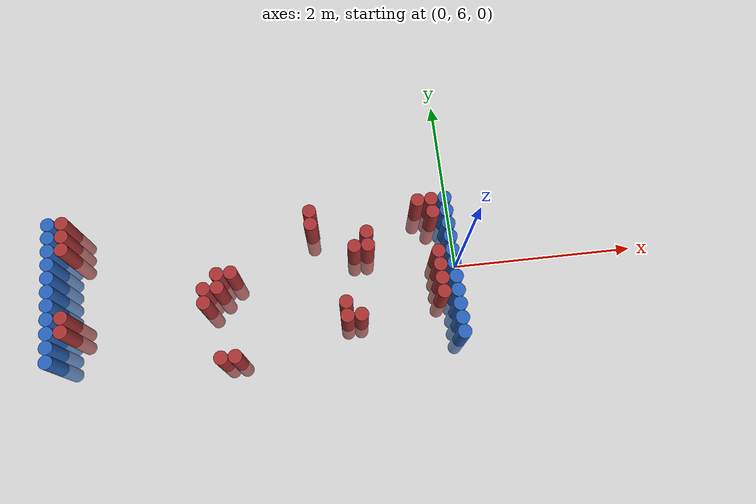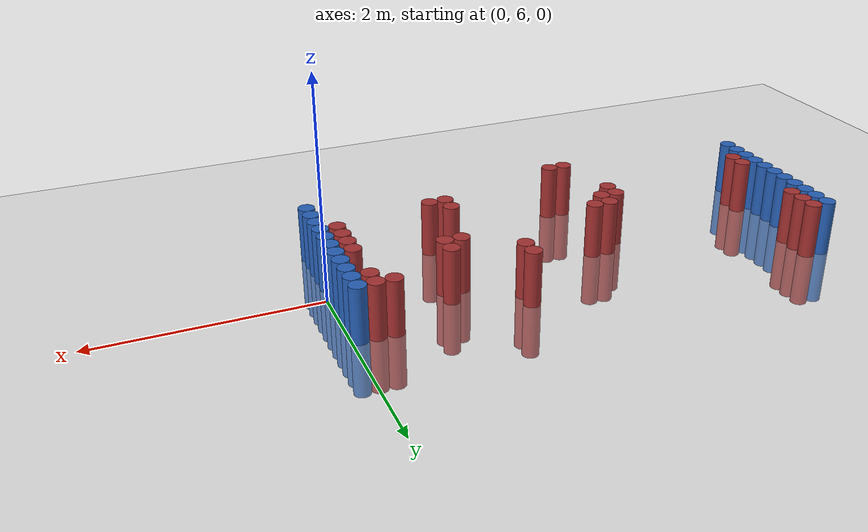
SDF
<sdf version="1.6">
 <world name="default">
  <model name="ground_plane">
   <static>1</static>
   <link name="link">
    <collision name="collision">
     <geometry><plane><normal>0 0 1</normal><size>100 100</size></plane></geometry>
     <surface><friction><ode><mu>100</mu><mu2>50</mu2></ode></friction></surface>
    </collision>
    <visual name="visual">
     <cast_shadows>0</cast_shadows>
     <geometry><plane><normal>0 0 1</normal><size>100 100</size></plane></geometry>
     <material>
      <script><uri>file://media/materials/scripts/gazebo.material</uri><name>Gazebo/Grey</name></script>
     </material>
    </visual>
   </link>
  </model>
  <model name="unit_cylinder_97">
   <static>1</static>
   <pose>-4.425000 5.325000 0.000000 0.000000 0.000000 0.000000</pose>
   <link name="link">
    <inertial>
     <mass>1</mass>
     <inertia><ixx>0.145833</ixx><ixy>0</ixy><ixz>0</ixz><iyy>0.145833</iyy><iyz>0</iyz><izz>0.125</izz></inertia>
    </inertial>
    <collision name="collision">
     <geometry><cylinder><radius>0.075000</radius><length>1</length></cylinder></geometry>
    </collision>
    <visual name="visual">
     <geometry><cylinder><radius>0.075000</radius><length>1</length></cylinder></geometry>
     <material>
      <ambient>0.152000 0.379000 0.720000 1</ambient>
      <diffuse>0.152000 0.379000 0.720000 1</diffuse>
     </material>
     <material>
      <script><name>Gazebo/Grey</name><uri>file://media/materials/scripts/gazebo.material</uri></script>
     </material>
    </visual>
   </link>
  </model>
  <model name="unit_cylinder_98">
   <static>1</static>
   <pose>-4.425000 5.475000 0.000000 0.000000 0.000000 0.000000</pose>
   <link name="link">
    <inertial>
     <mass>1</mass>
     <inertia><ixx>0.145833</ixx><ixy>0</ixy><ixz>0</ixz><iyy>0.145833</iyy><iyz>0</iyz><izz>0.125</izz></inertia>
    </inertial>
    <collision name="collision">
     <geometry><cylinder><radius>0.075000</radius><length>1</length></cylinder></geometry>
    </collision>
    <visual name="visual">
     <geometry><cylinder><radius>0.075000</radius><length>1</length></cylinder></geometry>
     <material>
      <ambient>0.152000 0.379000 0.720000 1</ambient>
      <diffuse>0.152000 0.379000 0.720000 1</diffuse>
     </material>
     <material>
      <script><name>Gazebo/Grey</name><uri>file://media/materials/scripts/gazebo.material</uri></script>
     </material>
    </visual>
   </link>
  </model>
  <model name="unit_cylinder_99">
   <static>1</static>
   <pose>-4.425000 5.625000 0.000000 0.000000 0.000000 0.000000</pose>
   <link name="link">
    <inertial>
     <mass>1</mass>
     <inertia><ixx>0.145833</ixx><ixy>0</ixy><ixz>0</ixz><iyy>0.145833</iyy><iyz>0</iyz><izz>0.125</izz></inertia>
    </inertial>
    <collision name="collision">
     <geometry><cylinder><radius>0.075000</radius><length>1</length></cylinder></geometry>
    </collision>
    <visual name="visual">
     <geometry><cylinder><radius>0.075000</radius><length>1</length></cylinder></geometry>
     <material>
      <ambient>0.152000 0.379000 0.720000 1</ambient>
      <diffuse>0.152000 0.379000 0.720000 1</diffuse>
     </material>
     <material>
      <script><name>Gazebo/Grey</name><uri>file://media/materials/scripts/gazebo.material</uri></script>
     </material>
    </visual>
   </link>
  </model>
  <model name="unit_cylinder_100">
   <static>1</static>
   <pose>-4.425000 5.775000 0.000000 0.000000 0.000000 0.000000</pose>
   <link name="link">
    <inertial>
     <mass>1</mass>
     <inertia><ixx>0.145833</ixx><ixy>0</ixy><ixz>0</ixz><iyy>0.145833</iyy><iyz>0</iyz><izz>0.125</izz></inertia>
    </inertial>
    <collision name="collision">
     <geometry><cylinder><radius>0.075000</radius><length>1</length></cylinder></geometry>
    </collision>
    <visual name="visual">
     <geometry><cylinder><radius>0.075000</radius><length>1</length></cylinder></geometry>
     <material>
      <ambient>0.152000 0.379000 0.720000 1</ambient>
      <diffuse>0.152000 0.379000 0.720000 1</diffuse>
     </material>
     <material>
      <script><name>Gazebo/Grey</name><uri>file://media/materials/scripts/gazebo.material</uri></script>
     </material>
    </visual>
   </link>
  </model>
  <model name="unit_cylinder_101">
   <static>1</static>
   <pose>-4.425000 5.925000 0.000000 0.000000 0.000000 0.000000</pose>
   <link name="link">
    <inertial>
     <mass>1</mass>
     <inertia><ixx>0.145833</ixx><ixy>0</ixy><ixz>0</ixz><iyy>0.145833</iyy><iyz>0</iyz><izz>0.125</izz></inertia>
    </inertial>
    <collision name="collision">
     <geometry><cylinder><radius>0.075000</radius><length>1</length></cylinder></geometry>
    </collision>
    <visual name="visual">
     <geometry><cylinder><radius>0.075000</radius><length>1</length></cylinder></geometry>
     <material>
      <ambient>0.152000 0.379000 0.720000 1</ambient>
      <diffuse>0.152000 0.379000 0.720000 1</diffuse>
     </material>
     <material>
      <script><name>Gazebo/Grey</name><uri>file://media/materials/scripts/gazebo.material</uri></script>
     </material>
    </visual>
   </link>
  </model>
  <model name="unit_cylinder_102">
   <static>1</static>
   <pose>-4.425000 6.075000 0.000000 0.000000 0.000000 0.000000</pose>
   <link name="link">
    <inertial>
     <mass>1</mass>
     <inertia><ixx>0.145833</ixx><ixy>0</ixy><ixz>0</ixz><iyy>0.145833</iyy><iyz>0</iyz><izz>0.125</izz></inertia>
    </inertial>
    <collision name="collision">
     <geometry><cylinder><radius>0.075000</radius><length>1</length></cylinder></geometry>
    </collision>
    <visual name="visual">
     <geometry><cylinder><radius>0.075000</radius><length>1</length></cylinder></geometry>
     <material>
      <ambient>0.152000 0.379000 0.720000 1</ambient>
      <diffuse>0.152000 0.379000 0.720000 1</diffuse>
     </material>
     <material>
      <script><name>Gazebo/Grey</name><uri>file://media/materials/scripts/gazebo.material</uri></script>
     </material>
    </visual>
   </link>
  </model>
  <model name="unit_cylinder_103">
   <static>1</static>
   <pose>-4.425000 6.225000 0.000000 0.000000 0.000000 0.000000</pose>
   <link name="link">
    <inertial>
     <mass>1</mass>
     <inertia><ixx>0.145833</ixx><ixy>0</ixy><ixz>0</ixz><iyy>0.145833</iyy><iyz>0</iyz><izz>0.125</izz></inertia>
    </inertial>
    <collision name="collision">
     <geometry><cylinder><radius>0.075000</radius><length>1</length></cylinder></geometry>
    </collision>
    <visual name="visual">
     <geometry><cylinder><radius>0.075000</radius><length>1</length></cylinder></geometry>
     <material>
      <ambient>0.152000 0.379000 0.720000 1</ambient>
      <diffuse>0.152000 0.379000 0.720000 1</diffuse>
     </material>
     <material>
      <script><name>Gazebo/Grey</name><uri>file://media/materials/scripts/gazebo.material</uri></script>
     </material>
    </visual>
   </link>
  </model>
  <model name="unit_cylinder_104">
   <static>1</static>
   <pose>-4.425000 6.375000 0.000000 0.000000 0.000000 0.000000</pose>
   <link name="link">
    <inertial>
     <mass>1</mass>
     <inertia><ixx>0.145833</ixx><ixy>0</ixy><ixz>0</ixz><iyy>0.145833</iyy><iyz>0</iyz><izz>0.125</izz></inertia>
    </inertial>
    <collision name="collision">
     <geometry><cylinder><radius>0.075000</radius><length>1</length></cylinder></geometry>
    </collision>
    <visual name="visual">
     <geometry><cylinder><radius>0.075000</radius><length>1</length></cylinder></geometry>
     <material>
      <ambient>0.152000 0.379000 0.720000 1</ambient>
      <diffuse>0.152000 0.379000 0.720000 1</diffuse>
     </material>
     <material>
      <script><name>Gazebo/Grey</name><uri>file://media/materials/scripts/gazebo.material</uri></script>
     </material>
    </visual>
   </link>
  </model>
  <model name="unit_cylinder_105">
   <static>1</static>
   <pose>-4.425000 6.525000 0.000000 0.000000 0.000000 0.000000</pose>
   <link name="link">
    <inertial>
     <mass>1</mass>
     <inertia><ixx>0.145833</ixx><ixy>0</ixy><ixz>0</ixz><iyy>0.145833</iyy><iyz>0</iyz><izz>0.125</izz></inertia>
    </inertial>
    <collision name="collision">
     <geometry><cylinder><radius>0.075000</radius><length>1</length></cylinder></geometry>
    </collision>
    <visual name="visual">
     <geometry><cylinder><radius>0.075000</radius><length>1</length></cylinder></geometry>
     <material>
      <ambient>0.152000 0.379000 0.720000 1</ambient>
      <diffuse>0.152000 0.379000 0.720000 1</diffuse>
     </material>
     <material>
      <script><name>Gazebo/Grey</name><uri>file://media/materials/scripts/gazebo.material</uri></script>
     </material>
    </visual>
   </link>
  </model>
  <model name="unit_cylinder_106">
   <static>1</static>
   <pose>-4.425000 6.675000 0.000000 0.000000 0.000000 0.000000</pose>
   <link name="link">
    <inertial>
     <mass>1</mass>
     <inertia><ixx>0.145833</ixx><ixy>0</ixy><ixz>0</ixz><iyy>0.145833</iyy><iyz>0</iyz><izz>0.125</izz></inertia>
    </inertial>
    <collision name="collision">
     <geometry><cylinder><radius>0.075000</radius><length>1</length></cylinder></geometry>
    </collision>
    <visual name="visual">
     <geometry><cylinder><radius>0.075000</radius><length>1</length></cylinder></geometry>
     <material>
      <ambient>0.152000 0.379000 0.720000 1</ambient>
      <diffuse>0.152000 0.379000 0.720000 1</diffuse>
     </material>
     <material>
      <script><name>Gazebo/Grey</name><uri>file://media/materials/scripts/gazebo.material</uri></script>
     </material>
    </visual>
   </link>
  </model>
  <model name="unit_cylinder_107">
   <static>1</static>
   <pose>-4.425000 6.825000 0.000000 0.000000 0.000000 0.000000</pose>
   <link name="link">
    <inertial>
     <mass>1</mass>
     <inertia><ixx>0.145833</ixx><ixy>0</ixy><ixz>0</ixz><iyy>0.145833</iyy><iyz>0</iyz><izz>0.125</izz></inertia>
    </inertial>
    <collision name="collision">
     <geometry><cylinder><radius>0.075000</radius><length>1</length></cylinder></geometry>
    </collision>
    <visual name="visual">
     <geometry><cylinder><radius>0.075000</radius><length>1</length></cylinder></geometry>
     <material>
      <ambient>0.152000 0.379000 0.720000 1</ambient>
      <diffuse>0.152000 0.379000 0.720000 1</diffuse>
     </material>
     <material>
      <script><name>Gazebo/Grey</name><uri>file://media/materials/scripts/gazebo.material</uri></script>
     </material>
    </visual>
   </link>
  </model>
  <model name="unit_cylinder_126">
   <static>1</static>
   <pose>-4.275000 5.625000 0.000000 0.000000 0.000000 0.000000</pose>
   <link name="link">
    <inertial>
     <mass>1</mass>
     <inertia><ixx>0.145833</ixx><ixy>0</ixy><ixz>0</ixz><iyy>0.145833</iyy><iyz>0</iyz><izz>0.125</izz></inertia>
    </inertial>
    <collision name="collision">
     <geometry><cylinder><radius>0.075000</radius><length>1</length></cylinder></geometry>
    </collision>
    <visual name="visual">
     <geometry><cylinder><radius>0.075000</radius><length>1</length></cylinder></geometry>
     <material>
      <ambient>0.648000 0.192000 0.192000 1</ambient>
      <diffuse>0.648000 0.192000 0.192000 1</diffuse>
     </material>
     <material>
      <script><name>Gazebo/Grey</name><uri>file://media/materials/scripts/gazebo.material</uri></script>
     </material>
    </visual>
   </link>
  </model>
  <model name="unit_cylinder_127">
   <static>1</static>
   <pose>-4.275000 5.775000 0.000000 0.000000 0.000000 0.000000</pose>
   <link name="link">
    <inertial>
     <mass>1</mass>
     <inertia><ixx>0.145833</ixx><ixy>0</ixy><ixz>0</ixz><iyy>0.145833</iyy><iyz>0</iyz><izz>0.125</izz></inertia>
    </inertial>
    <collision name="collision">
     <geometry><cylinder><radius>0.075000</radius><length>1</length></cylinder></geometry>
    </collision>
    <visual name="visual">
     <geometry><cylinder><radius>0.075000</radius><length>1</length></cylinder></geometry>
     <material>
      <ambient>0.648000 0.192000 0.192000 1</ambient>
      <diffuse>0.648000 0.192000 0.192000 1</diffuse>
     </material>
     <material>
      <script><name>Gazebo/Grey</name><uri>file://media/materials/scripts/gazebo.material</uri></script>
     </material>
    </visual>
   </link>
  </model>
  <model name="unit_cylinder_128">
   <static>1</static>
   <pose>-4.275000 6.525000 0.000000 0.000000 0.000000 0.000000</pose>
   <link name="link">
    <inertial>
     <mass>1</mass>
     <inertia><ixx>0.145833</ixx><ixy>0</ixy><ixz>0</ixz><iyy>0.145833</iyy><iyz>0</iyz><izz>0.125</izz></inertia>
    </inertial>
    <collision name="collision">
     <geometry><cylinder><radius>0.075000</radius><length>1</length></cylinder></geometry>
    </collision>
    <visual name="visual">
     <geometry><cylinder><radius>0.075000</radius><length>1</length></cylinder></geometry>
     <material>
      <ambient>0.648000 0.192000 0.192000 1</ambient>
      <diffuse>0.648000 0.192000 0.192000 1</diffuse>
     </material>
     <material>
      <script><name>Gazebo/Grey</name><uri>file://media/materials/scripts/gazebo.material</uri></script>
     </material>
    </visual>
   </link>
  </model>
  <model name="unit_cylinder_129">
   <static>1</static>
   <pose>-4.275000 6.675000 0.000000 0.000000 0.000000 0.000000</pose>
   <link name="link">
    <inertial>
     <mass>1</mass>
     <inertia><ixx>0.145833</ixx><ixy>0</ixy><ixz>0</ixz><iyy>0.145833</iyy><iyz>0</iyz><izz>0.125</izz></inertia>
    </inertial>
    <collision name="collision">
     <geometry><cylinder><radius>0.075000</radius><length>1</length></cylinder></geometry>
    </collision>
    <visual name="visual">
     <geometry><cylinder><radius>0.075000</radius><length>1</length></cylinder></geometry>
     <material>
      <ambient>0.648000 0.192000 0.192000 1</ambient>
      <diffuse>0.648000 0.192000 0.192000 1</diffuse>
     </material>
     <material>
      <script><name>Gazebo/Grey</name><uri>file://media/materials/scripts/gazebo.material</uri></script>
     </material>
    </visual>
   </link>
  </model>
  <model name="unit_cylinder_130">
   <static>1</static>
   <pose>-4.275000 6.825000 0.000000 0.000000 0.000000 0.000000</pose>
   <link name="link">
    <inertial>
     <mass>1</mass>
     <inertia><ixx>0.145833</ixx><ixy>0</ixy><ixz>0</ixz><iyy>0.145833</iyy><iyz>0</iyz><izz>0.125</izz></inertia>
    </inertial>
    <collision name="collision">
     <geometry><cylinder><radius>0.075000</radius><length>1</length></cylinder></geometry>
    </collision>
    <visual name="visual">
     <geometry><cylinder><radius>0.075000</radius><length>1</length></cylinder></geometry>
     <material>
      <ambient>0.648000 0.192000 0.192000 1</ambient>
      <diffuse>0.648000 0.192000 0.192000 1</diffuse>
     </material>
     <material>
      <script><name>Gazebo/Grey</name><uri>file://media/materials/scripts/gazebo.material</uri></script>
     </material>
    </visual>
   </link>
  </model>
  <model name="unit_cylinder_158">
   <static>1</static>
   <pose>-2.775000 5.775000 0.000000 0.000000 0.000000 0.000000</pose>
   <link name="link">
    <inertial>
     <mass>1</mass>
     <inertia><ixx>0.145833</ixx><ixy>0</ixy><ixz>0</ixz><iyy>0.145833</iyy><iyz>0</iyz><izz>0.125</izz></inertia>
    </inertial>
    <collision name="collision">
     <geometry><cylinder><radius>0.075000</radius><length>1</length></cylinder></geometry>
    </collision>
    <visual name="visual">
     <geometry><cylinder><radius>0.075000</radius><length>1</length></cylinder></geometry>
     <material>
      <ambient>0.648000 0.192000 0.192000 1</ambient>
      <diffuse>0.648000 0.192000 0.192000 1</diffuse>
     </material>
     <material>
      <script><name>Gazebo/Grey</name><uri>file://media/materials/scripts/gazebo.material</uri></script>
     </material>
    </visual>
   </link>
  </model>
  <model name="unit_cylinder_159">
   <static>1</static>
   <pose>-2.775000 5.925000 0.000000 0.000000 0.000000 0.000000</pose>
   <link name="link">
    <inertial>
     <mass>1</mass>
     <inertia><ixx>0.145833</ixx><ixy>0</ixy><ixz>0</ixz><iyy>0.145833</iyy><iyz>0</iyz><izz>0.125</izz></inertia>
    </inertial>
    <collision name="collision">
     <geometry><cylinder><radius>0.075000</radius><length>1</length></cylinder></geometry>
    </collision>
    <visual name="visual">
     <geometry><cylinder><radius>0.075000</radius><length>1</length></cylinder></geometry>
     <material>
      <ambient>0.648000 0.192000 0.192000 1</ambient>
      <diffuse>0.648000 0.192000 0.192000 1</diffuse>
     </material>
     <material>
      <script><name>Gazebo/Grey</name><uri>file://media/materials/scripts/gazebo.material</uri></script>
     </material>
    </visual>
   </link>
  </model>
  <model name="unit_cylinder_161">
   <static>1</static>
   <pose>-2.625000 5.175000 0.000000 0.000000 0.000000 0.000000</pose>
   <link name="link">
    <inertial>
     <mass>1</mass>
     <inertia><ixx>0.145833</ixx><ixy>0</ixy><ixz>0</ixz><iyy>0.145833</iyy><iyz>0</iyz><izz>0.125</izz></inertia>
    </inertial>
    <collision name="collision">
     <geometry><cylinder><radius>0.075000</radius><length>1</length></cylinder></geometry>
    </collision>
    <visual name="visual">
     <geometry><cylinder><radius>0.075000</radius><length>1</length></cylinder></geometry>
     <material>
      <ambient>0.648000 0.192000 0.192000 1</ambient>
      <diffuse>0.648000 0.192000 0.192000 1</diffuse>
     </material>
     <material>
      <script><name>Gazebo/Grey</name><uri>file://media/materials/scripts/gazebo.material</uri></script>
     </material>
    </visual>
   </link>
  </model>
  <model name="unit_cylinder_162">
   <static>1</static>
   <pose>-2.625000 5.925000 0.000000 0.000000 0.000000 0.000000</pose>
   <link name="link">
    <inertial>
     <mass>1</mass>
     <inertia><ixx>0.145833</ixx><ixy>0</ixy><ixz>0</ixz><iyy>0.145833</iyy><iyz>0</iyz><izz>0.125</izz></inertia>
    </inertial>
    <collision name="collision">
     <geometry><cylinder><radius>0.075000</radius><length>1</length></cylinder></geometry>
    </collision>
    <visual name="visual">
     <geometry><cylinder><radius>0.075000</radius><length>1</length></cylinder></geometry>
     <material>
      <ambient>0.648000 0.192000 0.192000 1</ambient>
      <diffuse>0.648000 0.192000 0.192000 1</diffuse>
     </material>
     <material>
      <script><name>Gazebo/Grey</name><uri>file://media/materials/scripts/gazebo.material</uri></script>
     </material>
    </visual>
   </link>
  </model>
  <model name="unit_cylinder_163">
   <static>1</static>
   <pose>-2.625000 6.075000 0.000000 0.000000 0.000000 0.000000</pose>
   <link name="link">
    <inertial>
     <mass>1</mass>
     <inertia><ixx>0.145833</ixx><ixy>0</ixy><ixz>0</ixz><iyy>0.145833</iyy><iyz>0</iyz><izz>0.125</izz></inertia>
    </inertial>
    <collision name="collision">
     <geometry><cylinder><radius>0.075000</radius><length>1</length></cylinder></geometry>
    </collision>
    <visual name="visual">
     <geometry><cylinder><radius>0.075000</radius><length>1</length></cylinder></geometry>
     <material>
      <ambient>0.648000 0.192000 0.192000 1</ambient>
      <diffuse>0.648000 0.192000 0.192000 1</diffuse>
     </material>
     <material>
      <script><name>Gazebo/Grey</name><uri>file://media/materials/scripts/gazebo.material</uri></script>
     </material>
    </visual>
   </link>
  </model>
  <model name="unit_cylinder_166">
   <static>1</static>
   <pose>-2.475000 5.175000 0.000000 0.000000 0.000000 0.000000</pose>
   <link name="link">
    <inertial>
     <mass>1</mass>
     <inertia><ixx>0.145833</ixx><ixy>0</ixy><ixz>0</ixz><iyy>0.145833</iyy><iyz>0</iyz><izz>0.125</izz></inertia>
    </inertial>
    <collision name="collision">
     <geometry><cylinder><radius>0.075000</radius><length>1</length></cylinder></geometry>
    </collision>
    <visual name="visual">
     <geometry><cylinder><radius>0.075000</radius><length>1</length></cylinder></geometry>
     <material>
      <ambient>0.648000 0.192000 0.192000 1</ambient>
      <diffuse>0.648000 0.192000 0.192000 1</diffuse>
     </material>
     <material>
      <script><name>Gazebo/Grey</name><uri>file://media/materials/scripts/gazebo.material</uri></script>
     </material>
    </visual>
   </link>
  </model>
  <model name="unit_cylinder_167">
   <static>1</static>
   <pose>-2.475000 6.075000 0.000000 0.000000 0.000000 0.000000</pose>
   <link name="link">
    <inertial>
     <mass>1</mass>
     <inertia><ixx>0.145833</ixx><ixy>0</ixy><ixz>0</ixz><iyy>0.145833</iyy><iyz>0</iyz><izz>0.125</izz></inertia>
    </inertial>
    <collision name="collision">
     <geometry><cylinder><radius>0.075000</radius><length>1</length></cylinder></geometry>
    </collision>
    <visual name="visual">
     <geometry><cylinder><radius>0.075000</radius><length>1</length></cylinder></geometry>
     <material>
      <ambient>0.648000 0.192000 0.192000 1</ambient>
      <diffuse>0.648000 0.192000 0.192000 1</diffuse>
     </material>
     <material>
      <script><name>Gazebo/Grey</name><uri>file://media/materials/scripts/gazebo.material</uri></script>
     </material>
    </visual>
   </link>
  </model>
  <model name="unit_cylinder_175">
   <static>1</static>
   <pose>-1.575000 6.525000 0.000000 0.000000 0.000000 0.000000</pose>
   <link name="link">
    <inertial>
     <mass>1</mass>
     <inertia><ixx>0.145833</ixx><ixy>0</ixy><ixz>0</ixz><iyy>0.145833</iyy><iyz>0</iyz><izz>0.125</izz></inertia>
    </inertial>
    <collision name="collision">
     <geometry><cylinder><radius>0.075000</radius><length>1</length></cylinder></geometry>
    </collision>
    <visual name="visual">
     <geometry><cylinder><radius>0.075000</radius><length>1</length></cylinder></geometry>
     <material>
      <ambient>0.648000 0.192000 0.192000 1</ambient>
      <diffuse>0.648000 0.192000 0.192000 1</diffuse>
     </material>
     <material>
      <script><name>Gazebo/Grey</name><uri>file://media/materials/scripts/gazebo.material</uri></script>
     </material>
    </visual>
   </link>
  </model>
  <model name="unit_cylinder_176">
   <static>1</static>
   <pose>-1.575000 6.675000 0.000000 0.000000 0.000000 0.000000</pose>
   <link name="link">
    <inertial>
     <mass>1</mass>
     <inertia><ixx>0.145833</ixx><ixy>0</ixy><ixz>0</ixz><iyy>0.145833</iyy><iyz>0</iyz><izz>0.125</izz></inertia>
    </inertial>
    <collision name="collision">
     <geometry><cylinder><radius>0.075000</radius><length>1</length></cylinder></geometry>
    </collision>
    <visual name="visual">
     <geometry><cylinder><radius>0.075000</radius><length>1</length></cylinder></geometry>
     <material>
      <ambient>0.648000 0.192000 0.192000 1</ambient>
      <diffuse>0.648000 0.192000 0.192000 1</diffuse>
     </material>
     <material>
      <script><name>Gazebo/Grey</name><uri>file://media/materials/scripts/gazebo.material</uri></script>
     </material>
    </visual>
   </link>
  </model>
  <model name="unit_cylinder_186">
   <static>1</static>
   <pose>-1.275000 5.475000 0.000000 0.000000 0.000000 0.000000</pose>
   <link name="link">
    <inertial>
     <mass>1</mass>
     <inertia><ixx>0.145833</ixx><ixy>0</ixy><ixz>0</ixz><iyy>0.145833</iyy><iyz>0</iyz><izz>0.125</izz></inertia>
    </inertial>
    <collision name="collision">
     <geometry><cylinder><radius>0.075000</radius><length>1</length></cylinder></geometry>
    </collision>
    <visual name="visual">
     <geometry><cylinder><radius>0.075000</radius><length>1</length></cylinder></geometry>
     <material>
      <ambient>0.648000 0.192000 0.192000 1</ambient>
      <diffuse>0.648000 0.192000 0.192000 1</diffuse>
     </material>
     <material>
      <script><name>Gazebo/Grey</name><uri>file://media/materials/scripts/gazebo.material</uri></script>
     </material>
    </visual>
   </link>
  </model>
  <model name="unit_cylinder_187">
   <static>1</static>
   <pose>-1.275000 5.625000 0.000000 0.000000 0.000000 0.000000</pose>
   <link name="link">
    <inertial>
     <mass>1</mass>
     <inertia><ixx>0.145833</ixx><ixy>0</ixy><ixz>0</ixz><iyy>0.145833</iyy><iyz>0</iyz><izz>0.125</izz></inertia>
    </inertial>
    <collision name="collision">
     <geometry><cylinder><radius>0.075000</radius><length>1</length></cylinder></geometry>
    </collision>
    <visual name="visual">
     <geometry><cylinder><radius>0.075000</radius><length>1</length></cylinder></geometry>
     <material>
      <ambient>0.648000 0.192000 0.192000 1</ambient>
      <diffuse>0.648000 0.192000 0.192000 1</diffuse>
     </material>
     <material>
      <script><name>Gazebo/Grey</name><uri>file://media/materials/scripts/gazebo.material</uri></script>
     </material>
    </visual>
   </link>
  </model>
  <model name="unit_cylinder_192">
   <static>1</static>
   <pose>-1.125000 5.475000 0.000000 0.000000 0.000000 0.000000</pose>
   <link name="link">
    <inertial>
     <mass>1</mass>
     <inertia><ixx>0.145833</ixx><ixy>0</ixy><ixz>0</ixz><iyy>0.145833</iyy><iyz>0</iyz><izz>0.125</izz></inertia>
    </inertial>
    <collision name="collision">
     <geometry><cylinder><radius>0.075000</radius><length>1</length></cylinder></geometry>
    </collision>
    <visual name="visual">
     <geometry><cylinder><radius>0.075000</radius><length>1</length></cylinder></geometry>
     <material>
      <ambient>0.648000 0.192000 0.192000 1</ambient>
      <diffuse>0.648000 0.192000 0.192000 1</diffuse>
     </material>
     <material>
      <script><name>Gazebo/Grey</name><uri>file://media/materials/scripts/gazebo.material</uri></script>
     </material>
    </visual>
   </link>
  </model>
  <model name="unit_cylinder_193">
   <static>1</static>
   <pose>-1.125000 6.225000 0.000000 0.000000 0.000000 0.000000</pose>
   <link name="link">
    <inertial>
     <mass>1</mass>
     <inertia><ixx>0.145833</ixx><ixy>0</ixy><ixz>0</ixz><iyy>0.145833</iyy><iyz>0</iyz><izz>0.125</izz></inertia>
    </inertial>
    <collision name="collision">
     <geometry><cylinder><radius>0.075000</radius><length>1</length></cylinder></geometry>
    </collision>
    <visual name="visual">
     <geometry><cylinder><radius>0.075000</radius><length>1</length></cylinder></geometry>
     <material>
      <ambient>0.648000 0.192000 0.192000 1</ambient>
      <diffuse>0.648000 0.192000 0.192000 1</diffuse>
     </material>
     <material>
      <script><name>Gazebo/Grey</name><uri>file://media/materials/scripts/gazebo.material</uri></script>
     </material>
    </visual>
   </link>
  </model>
  <model name="unit_cylinder_195">
   <static>1</static>
   <pose>-0.975000 6.225000 0.000000 0.000000 0.000000 0.000000</pose>
   <link name="link">
    <inertial>
     <mass>1</mass>
     <inertia><ixx>0.145833</ixx><ixy>0</ixy><ixz>0</ixz><iyy>0.145833</iyy><iyz>0</iyz><izz>0.125</izz></inertia>
    </inertial>
    <collision name="collision">
     <geometry><cylinder><radius>0.075000</radius><length>1</length></cylinder></geometry>
    </collision>
    <visual name="visual">
     <geometry><cylinder><radius>0.075000</radius><length>1</length></cylinder></geometry>
     <material>
      <ambient>0.648000 0.192000 0.192000 1</ambient>
      <diffuse>0.648000 0.192000 0.192000 1</diffuse>
     </material>
     <material>
      <script><name>Gazebo/Grey</name><uri>file://media/materials/scripts/gazebo.material</uri></script>
     </material>
    </visual>
   </link>
  </model>
  <model name="unit_cylinder_196">
   <static>1</static>
   <pose>-0.975000 6.375000 0.000000 0.000000 0.000000 0.000000</pose>
   <link name="link">
    <inertial>
     <mass>1</mass>
     <inertia><ixx>0.145833</ixx><ixy>0</ixy><ixz>0</ixz><iyy>0.145833</iyy><iyz>0</iyz><izz>0.125</izz></inertia>
    </inertial>
    <collision name="collision">
     <geometry><cylinder><radius>0.075000</radius><length>1</length></cylinder></geometry>
    </collision>
    <visual name="visual">
     <geometry><cylinder><radius>0.075000</radius><length>1</length></cylinder></geometry>
     <material>
      <ambient>0.648000 0.192000 0.192000 1</ambient>
      <diffuse>0.648000 0.192000 0.192000 1</diffuse>
     </material>
     <material>
      <script><name>Gazebo/Grey</name><uri>file://media/materials/scripts/gazebo.material</uri></script>
     </material>
    </visual>
   </link>
  </model>
  <model name="unit_cylinder_199">
   <static>1</static>
   <pose>-0.375000 6.675000 0.000000 0.000000 0.000000 0.000000</pose>
   <link name="link">
    <inertial>
     <mass>1</mass>
     <inertia><ixx>0.145833</ixx><ixy>0</ixy><ixz>0</ixz><iyy>0.145833</iyy><iyz>0</iyz><izz>0.125</izz></inertia>
    </inertial>
    <collision name="collision">
     <geometry><cylinder><radius>0.075000</radius><length>1</length></cylinder></geometry>
    </collision>
    <visual name="visual">
     <geometry><cylinder><radius>0.075000</radius><length>1</length></cylinder></geometry>
     <material>
      <ambient>0.648000 0.192000 0.192000 1</ambient>
      <diffuse>0.648000 0.192000 0.192000 1</diffuse>
     </material>
     <material>
      <script><name>Gazebo/Grey</name><uri>file://media/materials/scripts/gazebo.material</uri></script>
     </material>
    </visual>
   </link>
  </model>
  <model name="unit_cylinder_204">
   <static>1</static>
   <pose>-0.225000 5.625000 0.000000 0.000000 0.000000 0.000000</pose>
   <link name="link">
    <inertial>
     <mass>1</mass>
     <inertia><ixx>0.145833</ixx><ixy>0</ixy><ixz>0</ixz><iyy>0.145833</iyy><iyz>0</iyz><izz>0.125</izz></inertia>
    </inertial>
    <collision name="collision">
     <geometry><cylinder><radius>0.075000</radius><length>1</length></cylinder></geometry>
    </collision>
    <visual name="visual">
     <geometry><cylinder><radius>0.075000</radius><length>1</length></cylinder></geometry>
     <material>
      <ambient>0.648000 0.192000 0.192000 1</ambient>
      <diffuse>0.648000 0.192000 0.192000 1</diffuse>
     </material>
     <material>
      <script><name>Gazebo/Grey</name><uri>file://media/materials/scripts/gazebo.material</uri></script>
     </material>
    </visual>
   </link>
  </model>
  <model name="unit_cylinder_205">
   <static>1</static>
   <pose>-0.225000 5.775000 0.000000 0.000000 0.000000 0.000000</pose>
   <link name="link">
    <inertial>
     <mass>1</mass>
     <inertia><ixx>0.145833</ixx><ixy>0</ixy><ixz>0</ixz><iyy>0.145833</iyy><iyz>0</iyz><izz>0.125</izz></inertia>
    </inertial>
    <collision name="collision">
     <geometry><cylinder><radius>0.075000</radius><length>1</length></cylinder></geometry>
    </collision>
    <visual name="visual">
     <geometry><cylinder><radius>0.075000</radius><length>1</length></cylinder></geometry>
     <material>
      <ambient>0.648000 0.192000 0.192000 1</ambient>
      <diffuse>0.648000 0.192000 0.192000 1</diffuse>
     </material>
     <material>
      <script><name>Gazebo/Grey</name><uri>file://media/materials/scripts/gazebo.material</uri></script>
     </material>
    </visual>
   </link>
  </model>
  <model name="unit_cylinder_206">
   <static>1</static>
   <pose>-0.225000 5.925000 0.000000 0.000000 0.000000 0.000000</pose>
   <link name="link">
    <inertial>
     <mass>1</mass>
     <inertia><ixx>0.145833</ixx><ixy>0</ixy><ixz>0</ixz><iyy>0.145833</iyy><iyz>0</iyz><izz>0.125</izz></inertia>
    </inertial>
    <collision name="collision">
     <geometry><cylinder><radius>0.075000</radius><length>1</length></cylinder></geometry>
    </collision>
    <visual name="visual">
     <geometry><cylinder><radius>0.075000</radius><length>1</length></cylinder></geometry>
     <material>
      <ambient>0.648000 0.192000 0.192000 1</ambient>
      <diffuse>0.648000 0.192000 0.192000 1</diffuse>
     </material>
     <material>
      <script><name>Gazebo/Grey</name><uri>file://media/materials/scripts/gazebo.material</uri></script>
     </material>
    </visual>
   </link>
  </model>
  <model name="unit_cylinder_207">
   <static>1</static>
   <pose>-0.225000 6.075000 0.000000 0.000000 0.000000 0.000000</pose>
   <link name="link">
    <inertial>
     <mass>1</mass>
     <inertia><ixx>0.145833</ixx><ixy>0</ixy><ixz>0</ixz><iyy>0.145833</iyy><iyz>0</iyz><izz>0.125</izz></inertia>
    </inertial>
    <collision name="collision">
     <geometry><cylinder><radius>0.075000</radius><length>1</length></cylinder></geometry>
    </collision>
    <visual name="visual">
     <geometry><cylinder><radius>0.075000</radius><length>1</length></cylinder></geometry>
     <material>
      <ambient>0.648000 0.192000 0.192000 1</ambient>
      <diffuse>0.648000 0.192000 0.192000 1</diffuse>
     </material>
     <material>
      <script><name>Gazebo/Grey</name><uri>file://media/materials/scripts/gazebo.material</uri></script>
     </material>
    </visual>
   </link>
  </model>
  <model name="unit_cylinder_208">
   <static>1</static>
   <pose>-0.225000 6.525000 0.000000 0.000000 0.000000 0.000000</pose>
   <link name="link">
    <inertial>
     <mass>1</mass>
     <inertia><ixx>0.145833</ixx><ixy>0</ixy><ixz>0</ixz><iyy>0.145833</iyy><iyz>0</iyz><izz>0.125</izz></inertia>
    </inertial>
    <collision name="collision">
     <geometry><cylinder><radius>0.075000</radius><length>1</length></cylinder></geometry>
    </collision>
    <visual name="visual">
     <geometry><cylinder><radius>0.075000</radius><length>1</length></cylinder></geometry>
     <material>
      <ambient>0.648000 0.192000 0.192000 1</ambient>
      <diffuse>0.648000 0.192000 0.192000 1</diffuse>
     </material>
     <material>
      <script><name>Gazebo/Grey</name><uri>file://media/materials/scripts/gazebo.material</uri></script>
     </material>
    </visual>
   </link>
  </model>
  <model name="unit_cylinder_209">
   <static>1</static>
   <pose>-0.225000 6.675000 0.000000 0.000000 0.000000 0.000000</pose>
   <link name="link">
    <inertial>
     <mass>1</mass>
     <inertia><ixx>0.145833</ixx><ixy>0</ixy><ixz>0</ixz><iyy>0.145833</iyy><iyz>0</iyz><izz>0.125</izz></inertia>
    </inertial>
    <collision name="collision">
     <geometry><cylinder><radius>0.075000</radius><length>1</length></cylinder></geometry>
    </collision>
    <visual name="visual">
     <geometry><cylinder><radius>0.075000</radius><length>1</length></cylinder></geometry>
     <material>
      <ambient>0.648000 0.192000 0.192000 1</ambient>
      <diffuse>0.648000 0.192000 0.192000 1</diffuse>
     </material>
     <material>
      <script><name>Gazebo/Grey</name><uri>file://media/materials/scripts/gazebo.material</uri></script>
     </material>
    </visual>
   </link>
  </model>
  <model name="unit_cylinder_213">
   <static>1</static>
   <pose>-0.075000 5.175000 0.000000 0.000000 0.000000 0.000000</pose>
   <link name="link">
    <inertial>
     <mass>1</mass>
     <inertia><ixx>0.145833</ixx><ixy>0</ixy><ixz>0</ixz><iyy>0.145833</iyy><iyz>0</iyz><izz>0.125</izz></inertia>
    </inertial>
    <collision name="collision">
     <geometry><cylinder><radius>0.075000</radius><length>1</length></cylinder></geometry>
    </collision>
    <visual name="visual">
     <geometry><cylinder><radius>0.075000</radius><length>1</length></cylinder></geometry>
     <material>
      <ambient>0.152000 0.379000 0.720000 1</ambient>
      <diffuse>0.152000 0.379000 0.720000 1</diffuse>
     </material>
     <material>
      <script><name>Gazebo/Grey</name><uri>file://media/materials/scripts/gazebo.material</uri></script>
     </material>
    </visual>
   </link>
  </model>
  <model name="unit_cylinder_214">
   <static>1</static>
   <pose>-0.075000 5.325000 0.000000 0.000000 0.000000 0.000000</pose>
   <link name="link">
    <inertial>
     <mass>1</mass>
     <inertia><ixx>0.145833</ixx><ixy>0</ixy><ixz>0</ixz><iyy>0.145833</iyy><iyz>0</iyz><izz>0.125</izz></inertia>
    </inertial>
    <collision name="collision">
     <geometry><cylinder><radius>0.075000</radius><length>1</length></cylinder></geometry>
    </collision>
    <visual name="visual">
     <geometry><cylinder><radius>0.075000</radius><length>1</length></cylinder></geometry>
     <material>
      <ambient>0.152000 0.379000 0.720000 1</ambient>
      <diffuse>0.152000 0.379000 0.720000 1</diffuse>
     </material>
     <material>
      <script><name>Gazebo/Grey</name><uri>file://media/materials/scripts/gazebo.material</uri></script>
     </material>
    </visual>
   </link>
  </model>
  <model name="unit_cylinder_215">
   <static>1</static>
   <pose>-0.075000 5.475000 0.000000 0.000000 0.000000 0.000000</pose>
   <link name="link">
    <inertial>
     <mass>1</mass>
     <inertia><ixx>0.145833</ixx><ixy>0</ixy><ixz>0</ixz><iyy>0.145833</iyy><iyz>0</iyz><izz>0.125</izz></inertia>
    </inertial>
    <collision name="collision">
     <geometry><cylinder><radius>0.075000</radius><length>1</length></cylinder></geometry>
    </collision>
    <visual name="visual">
     <geometry><cylinder><radius>0.075000</radius><length>1</length></cylinder></geometry>
     <material>
      <ambient>0.152000 0.379000 0.720000 1</ambient>
      <diffuse>0.152000 0.379000 0.720000 1</diffuse>
     </material>
     <material>
      <script><name>Gazebo/Grey</name><uri>file://media/materials/scripts/gazebo.material</uri></script>
     </material>
    </visual>
   </link>
  </model>
  <model name="unit_cylinder_216">
   <static>1</static>
   <pose>-0.075000 5.625000 0.000000 0.000000 0.000000 0.000000</pose>
   <link name="link">
    <inertial>
     <mass>1</mass>
     <inertia><ixx>0.145833</ixx><ixy>0</ixy><ixz>0</ixz><iyy>0.145833</iyy><iyz>0</iyz><izz>0.125</izz></inertia>
    </inertial>
    <collision name="collision">
     <geometry><cylinder><radius>0.075000</radius><length>1</length></cylinder></geometry>
    </collision>
    <visual name="visual">
     <geometry><cylinder><radius>0.075000</radius><length>1</length></cylinder></geometry>
     <material>
      <ambient>0.152000 0.379000 0.720000 1</ambient>
      <diffuse>0.152000 0.379000 0.720000 1</diffuse>
     </material>
     <material>
      <script><name>Gazebo/Grey</name><uri>file://media/materials/scripts/gazebo.material</uri></script>
     </material>
    </visual>
   </link>
  </model>
  <model name="unit_cylinder_217">
   <static>1</static>
   <pose>-0.075000 5.775000 0.000000 0.000000 0.000000 0.000000</pose>
   <link name="link">
    <inertial>
     <mass>1</mass>
     <inertia><ixx>0.145833</ixx><ixy>0</ixy><ixz>0</ixz><iyy>0.145833</iyy><iyz>0</iyz><izz>0.125</izz></inertia>
    </inertial>
    <collision name="collision">
     <geometry><cylinder><radius>0.075000</radius><length>1</length></cylinder></geometry>
    </collision>
    <visual name="visual">
     <geometry><cylinder><radius>0.075000</radius><length>1</length></cylinder></geometry>
     <material>
      <ambient>0.152000 0.379000 0.720000 1</ambient>
      <diffuse>0.152000 0.379000 0.720000 1</diffuse>
     </material>
     <material>
      <script><name>Gazebo/Grey</name><uri>file://media/materials/scripts/gazebo.material</uri></script>
     </material>
    </visual>
   </link>
  </model>
  <model name="unit_cylinder_218">
   <static>1</static>
   <pose>-0.075000 5.925000 0.000000 0.000000 0.000000 0.000000</pose>
   <link name="link">
    <inertial>
     <mass>1</mass>
     <inertia><ixx>0.145833</ixx><ixy>0</ixy><ixz>0</ixz><iyy>0.145833</iyy><iyz>0</iyz><izz>0.125</izz></inertia>
    </inertial>
    <collision name="collision">
     <geometry><cylinder><radius>0.075000</radius><length>1</length></cylinder></geometry>
    </collision>
    <visual name="visual">
     <geometry><cylinder><radius>0.075000</radius><length>1</length></cylinder></geometry>
     <material>
      <ambient>0.152000 0.379000 0.720000 1</ambient>
      <diffuse>0.152000 0.379000 0.720000 1</diffuse>
     </material>
     <material>
      <script><name>Gazebo/Grey</name><uri>file://media/materials/scripts/gazebo.material</uri></script>
     </material>
    </visual>
   </link>
  </model>
  <model name="unit_cylinder_219">
   <static>1</static>
   <pose>-0.075000 6.075000 0.000000 0.000000 0.000000 0.000000</pose>
   <link name="link">
    <inertial>
     <mass>1</mass>
     <inertia><ixx>0.145833</ixx><ixy>0</ixy><ixz>0</ixz><iyy>0.145833</iyy><iyz>0</iyz><izz>0.125</izz></inertia>
    </inertial>
    <collision name="collision">
     <geometry><cylinder><radius>0.075000</radius><length>1</length></cylinder></geometry>
    </collision>
    <visual name="visual">
     <geometry><cylinder><radius>0.075000</radius><length>1</length></cylinder></geometry>
     <material>
      <ambient>0.152000 0.379000 0.720000 1</ambient>
      <diffuse>0.152000 0.379000 0.720000 1</diffuse>
     </material>
     <material>
      <script><name>Gazebo/Grey</name><uri>file://media/materials/scripts/gazebo.material</uri></script>
     </material>
    </visual>
   </link>
  </model>
  <model name="unit_cylinder_220">
   <static>1</static>
   <pose>-0.075000 6.225000 0.000000 0.000000 0.000000 0.000000</pose>
   <link name="link">
    <inertial>
     <mass>1</mass>
     <inertia><ixx>0.145833</ixx><ixy>0</ixy><ixz>0</ixz><iyy>0.145833</iyy><iyz>0</iyz><izz>0.125</izz></inertia>
    </inertial>
    <collision name="collision">
     <geometry><cylinder><radius>0.075000</radius><length>1</length></cylinder></geometry>
    </collision>
    <visual name="visual">
     <geometry><cylinder><radius>0.075000</radius><length>1</length></cylinder></geometry>
     <material>
      <ambient>0.152000 0.379000 0.720000 1</ambient>
      <diffuse>0.152000 0.379000 0.720000 1</diffuse>
     </material>
     <material>
      <script><name>Gazebo/Grey</name><uri>file://media/materials/scripts/gazebo.material</uri></script>
     </material>
    </visual>
   </link>
  </model>
  <model name="unit_cylinder_221">
   <static>1</static>
   <pose>-0.075000 6.375000 0.000000 0.000000 0.000000 0.000000</pose>
   <link name="link">
    <inertial>
     <mass>1</mass>
     <inertia><ixx>0.145833</ixx><ixy>0</ixy><ixz>0</ixz><iyy>0.145833</iyy><iyz>0</iyz><izz>0.125</izz></inertia>
    </inertial>
    <collision name="collision">
     <geometry><cylinder><radius>0.075000</radius><length>1</length></cylinder></geometry>
    </collision>
    <visual name="visual">
     <geometry><cylinder><radius>0.075000</radius><length>1</length></cylinder></geometry>
     <material>
      <ambient>0.152000 0.379000 0.720000 1</ambient>
      <diffuse>0.152000 0.379000 0.720000 1</diffuse>
     </material>
     <material>
      <script><name>Gazebo/Grey</name><uri>file://media/materials/scripts/gazebo.material</uri></script>
     </material>
    </visual>
   </link>
  </model>
  <model name="unit_cylinder_222">
   <static>1</static>
   <pose>-0.075000 6.525000 0.000000 0.000000 0.000000 0.000000</pose>
   <link name="link">
    <inertial>
     <mass>1</mass>
     <inertia><ixx>0.145833</ixx><ixy>0</ixy><ixz>0</ixz><iyy>0.145833</iyy><iyz>0</iyz><izz>0.125</izz></inertia>
    </inertial>
    <collision name="collision">
     <geometry><cylinder><radius>0.075000</radius><length>1</length></cylinder></geometry>
    </collision>
    <visual name="visual">
     <geometry><cylinder><radius>0.075000</radius><length>1</length></cylinder></geometry>
     <material>
      <ambient>0.152000 0.379000 0.720000 1</ambient>
      <diffuse>0.152000 0.379000 0.720000 1</diffuse>
     </material>
     <material>
      <script><name>Gazebo/Grey</name><uri>file://media/materials/scripts/gazebo.material</uri></script>
     </material>
    </visual>
   </link>
  </model>
  <model name="unit_cylinder_223">
   <static>1</static>
   <pose>-0.075000 6.675000 0.000000 0.000000 0.000000 0.000000</pose>
   <link name="link">
    <inertial>
     <mass>1</mass>
     <inertia><ixx>0.145833</ixx><ixy>0</ixy><ixz>0</ixz><iyy>0.145833</iyy><iyz>0</iyz><izz>0.125</izz></inertia>
    </inertial>
    <collision name="collision">
     <geometry><cylinder><radius>0.075000</radius><length>1</length></cylinder></geometry>
    </collision>
    <visual name="visual">
     <geometry><cylinder><radius>0.075000</radius><length>1</length></cylinder></geometry>
     <material>
      <ambient>0.152000 0.379000 0.720000 1</ambient>
      <diffuse>0.152000 0.379000 0.720000 1</diffuse>
     </material>
     <material>
      <script><name>Gazebo/Grey</name><uri>file://media/materials/scripts/gazebo.material</uri></script>
     </material>
    </visual>
   </link>
  </model>
 </world>
</sdf>
